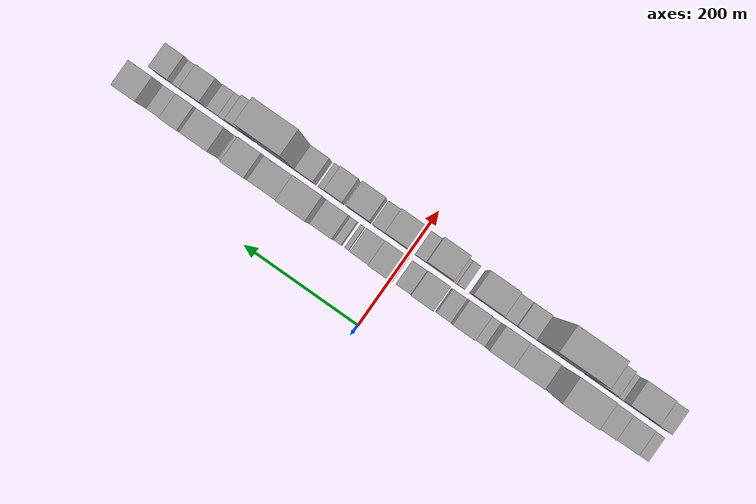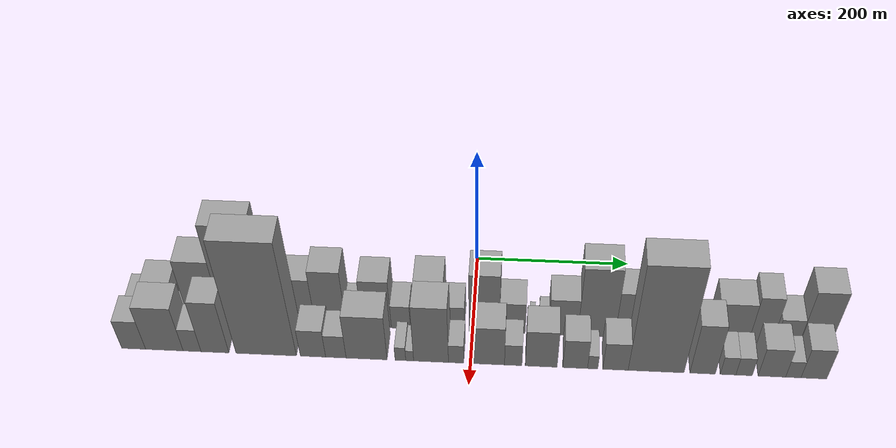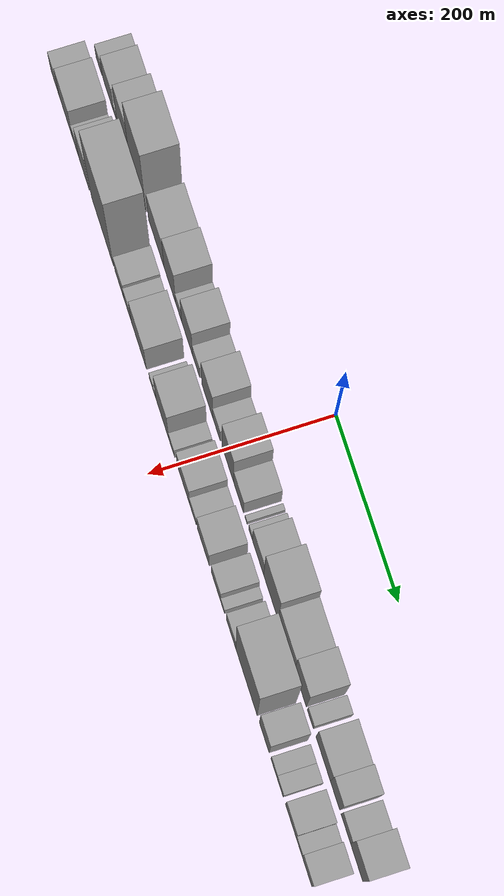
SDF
<sdf version="1.6">
 <world name="default">
  <scene>
   <sky><clouds><speed>12</speed></clouds></sky>
   <ambient>0.4 0.4 0.4 1</ambient>
   <background>0.7 0.7 0.7 1</background>
   <shadows>1</shadows>
  </scene>
  <gravity>0 0 -9.8066</gravity>
  <magnetic_field>6e-06 2.3e-05 -4.2e-05</magnetic_field>
  <physics default="0" name="default_physics" type="ode">
   <ode>
    <solver>
     <type>quick</type>
     <iters>10</iters>
     <sor>1.0</sor>
     <use_dynamic_moi_rescaling>0</use_dynamic_moi_rescaling>
    </solver>
    <constraints>
     <cfm>0</cfm>
     <erp>0.2</erp>
     <contact_max_correcting_vel>100</contact_max_correcting_vel>
     <contact_surface_layer>0.001</contact_surface_layer>
    </constraints>
   </ode>
   <max_step_size>0.004</max_step_size>
   <real_time_factor>1</real_time_factor>
   <real_time_update_rate>250</real_time_update_rate>
  </physics>
  <light name="sun" type="directional">
   <pose>0 0 10 0 0 0</pose>
   <diffuse>0.8 0.8 0.8 1</diffuse>
   <specular>0.2 0.2 0.2 1</specular>
   <attenuation>
    <range>1000</range>
    <constant>0.9</constant>
    <linear>0.01</linear>
    <quadratic>0.001</quadratic>
   </attenuation>
   <direction>-0.5 0.1 -0.9</direction>
  </light>
  <model name="building_1">
   <static>1</static>
   <pose>100.0000 -427.6535 0 0.000000 0.000000 0.000000</pose>
   <link name="link">
    <pose>0 0 19.50 0 0 0</pose>
    <collision name="collision"><geometry><box><size>40.0000 20.6931 39.0000</size></box></geometry></collision>
    <visual name="visual">
     <cast_shadows>0</cast_shadows>
     <geometry><box><size>40.0000 20.6931 39.0000</size></box></geometry>
     <material>
      <script>
       <uri>model://grey_wall/materials/scripts</uri>
       <uri>model://grey_wall/materials/textures</uri>
       <name>vrc/grey_wall</name>
      </script>
     </material>
    </visual>
   </link>
  </model>
  <model name="building_2">
   <static>1</static>
   <pose>100.0000 -394.6250 0 0.000000 0.000000 0.000000</pose>
   <link name="link">
    <pose>0 0 34.50 0 0 0</pose>
    <collision name="collision"><geometry><box><size>40.0000 37.3639 69.0000</size></box></geometry></collision>
    <visual name="visual">
     <cast_shadows>0</cast_shadows>
     <geometry><box><size>40.0000 37.3639 69.0000</size></box></geometry>
     <material>
      <script>
       <uri>model://grey_wall/materials/scripts</uri>
       <uri>model://grey_wall/materials/textures</uri>
       <name>vrc/grey_wall</name>
      </script>
     </material>
    </visual>
   </link>
  </model>
  <model name="building_3">
   <static>1</static>
   <pose>100.0000 -369.5187 0 0.000000 0.000000 0.000000</pose>
   <link name="link">
    <pose>0 0 13.50 0 0 0</pose>
    <collision name="collision"><geometry><box><size>40.0000 12.8487 27.0000</size></box></geometry></collision>
    <visual name="visual">
     <cast_shadows>0</cast_shadows>
     <geometry><box><size>40.0000 12.8487 27.0000</size></box></geometry>
     <material>
      <script>
       <uri>model://grey_wall/materials/scripts</uri>
       <uri>model://grey_wall/materials/textures</uri>
       <name>vrc/grey_wall</name>
      </script>
     </material>
    </visual>
   </link>
  </model>
  <model name="building_4">
   <static>1</static>
   <pose>100.0000 -341.1027 0 0.000000 0.000000 0.000000</pose>
   <link name="link">
    <pose>0 0 58.50 0 0 0</pose>
    <collision name="collision"><geometry><box><size>40.0000 43.9832 117.0000</size></box></geometry></collision>
    <visual name="visual">
     <cast_shadows>0</cast_shadows>
     <geometry><box><size>40.0000 43.9832 117.0000</size></box></geometry>
     <material>
      <script>
       <uri>model://grey_wall/materials/scripts</uri>
       <uri>model://grey_wall/materials/textures</uri>
       <name>vrc/grey_wall</name>
      </script>
     </material>
    </visual>
   </link>
  </model>
  <model name="building_5">
   <static>1</static>
   <pose>100.0000 -290.9600 0 0.000000 0.000000 0.000000</pose>
   <link name="link">
    <pose>0 0 93.00 0 0 0</pose>
    <collision name="collision"><geometry><box><size>40.0000 56.3022 186.0000</size></box></geometry></collision>
    <visual name="visual">
     <cast_shadows>0</cast_shadows>
     <geometry><box><size>40.0000 56.3022 186.0000</size></box></geometry>
     <material>
      <script>
       <uri>model://grey_wall/materials/scripts</uri>
       <uri>model://grey_wall/materials/textures</uri>
       <name>vrc/grey_wall</name>
      </script>
     </material>
    </visual>
   </link>
  </model>
  <model name="building_6">
   <static>1</static>
   <pose>100.0000 -227.0618 0 0.000000 0.000000 0.000000</pose>
   <link name="link">
    <pose>0 0 45.00 0 0 0</pose>
    <collision name="collision"><geometry><box><size>40.0000 53.4941 90.0000</size></box></geometry></collision>
    <visual name="visual">
     <cast_shadows>0</cast_shadows>
     <geometry><box><size>40.0000 53.4941 90.0000</size></box></geometry>
     <material>
      <script>
       <uri>model://grey_wall/materials/scripts</uri>
       <uri>model://grey_wall/materials/textures</uri>
       <name>vrc/grey_wall</name>
      </script>
     </material>
    </visual>
   </link>
  </model>
  <model name="building_7">
   <static>1</static>
   <pose>100.0000 -180.6068 0 0.000000 0.000000 0.000000</pose>
   <link name="link">
    <pose>0 0 54.00 0 0 0</pose>
    <collision name="collision"><geometry><box><size>40.0000 39.4160 108.0000</size></box></geometry></collision>
    <visual name="visual">
     <cast_shadows>0</cast_shadows>
     <geometry><box><size>40.0000 39.4160 108.0000</size></box></geometry>
     <material>
      <script>
       <uri>model://grey_wall/materials/scripts</uri>
       <uri>model://grey_wall/materials/textures</uri>
       <name>vrc/grey_wall</name>
      </script>
     </material>
    </visual>
   </link>
  </model>
  <model name="building_8">
   <static>1</static>
   <pose>100.0000 -150.5978 0 0.000000 0.000000 0.000000</pose>
   <link name="link">
    <pose>0 0 19.50 0 0 0</pose>
    <collision name="collision"><geometry><box><size>40.0000 20.6020 39.0000</size></box></geometry></collision>
    <visual name="visual">
     <cast_shadows>0</cast_shadows>
     <geometry><box><size>40.0000 20.6020 39.0000</size></box></geometry>
     <material>
      <script>
       <uri>model://grey_wall/materials/scripts</uri>
       <uri>model://grey_wall/materials/textures</uri>
       <name>vrc/grey_wall</name>
      </script>
     </material>
    </visual>
   </link>
  </model>
  <model name="building_9">
   <static>1</static>
   <pose>100.0000 -121.7113 0 0.000000 0.000000 0.000000</pose>
   <link name="link">
    <pose>0 0 46.50 0 0 0</pose>
    <collision name="collision"><geometry><box><size>40.0000 37.1710 93.0000</size></box></geometry></collision>
    <visual name="visual">
     <cast_shadows>0</cast_shadows>
     <geometry><box><size>40.0000 37.1710 93.0000</size></box></geometry>
     <material>
      <script>
       <uri>model://grey_wall/materials/scripts</uri>
       <uri>model://grey_wall/materials/textures</uri>
       <name>vrc/grey_wall</name>
      </script>
     </material>
    </visual>
   </link>
  </model>
  <model name="building_10">
   <static>1</static>
   <pose>100.0000 -90.9961 0 0.000000 0.000000 0.000000</pose>
   <link name="link">
    <pose>0 0 22.50 0 0 0</pose>
    <collision name="collision"><geometry><box><size>40.0000 24.2593 45.0000</size></box></geometry></collision>
    <visual name="visual">
     <cast_shadows>0</cast_shadows>
     <geometry><box><size>40.0000 24.2593 45.0000</size></box></geometry>
     <material>
      <script>
       <uri>model://grey_wall/materials/scripts</uri>
       <uri>model://grey_wall/materials/textures</uri>
       <name>vrc/grey_wall</name>
      </script>
     </material>
    </visual>
   </link>
  </model>
  <model name="building_11">
   <static>1</static>
   <pose>100.0000 -53.4743 0 0.000000 0.000000 0.000000</pose>
   <link name="link">
    <pose>0 0 49.50 0 0 0</pose>
    <collision name="collision"><geometry><box><size>40.0000 36.7844 99.0000</size></box></geometry></collision>
    <visual name="visual">
     <cast_shadows>0</cast_shadows>
     <geometry><box><size>40.0000 36.7844 99.0000</size></box></geometry>
     <material>
      <script>
       <uri>model://grey_wall/materials/scripts</uri>
       <uri>model://grey_wall/materials/textures</uri>
       <name>vrc/grey_wall</name>
      </script>
     </material>
    </visual>
   </link>
  </model>
  <model name="building_12">
   <static>1</static>
   <pose>100.0000 -22.6078 0 0.000000 0.000000 0.000000</pose>
   <link name="link">
    <pose>0 0 24.00 0 0 0</pose>
    <collision name="collision"><geometry><box><size>40.0000 24.9486 48.0000</size></box></geometry></collision>
    <visual name="visual">
     <cast_shadows>0</cast_shadows>
     <geometry><box><size>40.0000 24.9486 48.0000</size></box></geometry>
     <material>
      <script>
       <uri>model://grey_wall/materials/scripts</uri>
       <uri>model://grey_wall/materials/textures</uri>
       <name>vrc/grey_wall</name>
      </script>
     </material>
    </visual>
   </link>
  </model>
  <model name="building_13">
   <static>1</static>
   <pose>100.0000 15.1622 0 0.000000 0.000000 0.000000</pose>
   <link name="link">
    <pose>0 0 57.00 0 0 0</pose>
    <collision name="collision"><geometry><box><size>40.0000 38.5914 114.0000</size></box></geometry></collision>
    <visual name="visual">
     <cast_shadows>0</cast_shadows>
     <geometry><box><size>40.0000 38.5914 114.0000</size></box></geometry>
     <material>
      <script>
       <uri>model://grey_wall/materials/scripts</uri>
       <uri>model://grey_wall/materials/textures</uri>
       <name>vrc/grey_wall</name>
      </script>
     </material>
    </visual>
   </link>
  </model>
  <model name="building_14">
   <static>1</static>
   <pose>100.0000 50.7963 0 0.000000 0.000000 0.000000</pose>
   <link name="link">
    <pose>0 0 30.00 0 0 0</pose>
    <collision name="collision"><geometry><box><size>40.0000 32.6769 60.0000</size></box></geometry></collision>
    <visual name="visual">
     <cast_shadows>0</cast_shadows>
     <geometry><box><size>40.0000 32.6769 60.0000</size></box></geometry>
     <material>
      <script>
       <uri>model://grey_wall/materials/scripts</uri>
       <uri>model://grey_wall/materials/textures</uri>
       <name>vrc/grey_wall</name>
      </script>
     </material>
    </visual>
   </link>
  </model>
  <model name="building_15">
   <static>1</static>
   <pose>100.0000 75.6895 0 0.000000 0.000000 0.000000</pose>
   <link name="link">
    <pose>0 0 7.50 0 0 0</pose>
    <collision name="collision"><geometry><box><size>40.0000 7.1095 15.0000</size></box></geometry></collision>
    <visual name="visual">
     <cast_shadows>0</cast_shadows>
     <geometry><box><size>40.0000 7.1095 15.0000</size></box></geometry>
     <material>
      <script>
       <uri>model://grey_wall/materials/scripts</uri>
       <uri>model://grey_wall/materials/textures</uri>
       <name>vrc/grey_wall</name>
      </script>
     </material>
    </visual>
   </link>
  </model>
  <model name="building_16">
   <static>1</static>
   <pose>100.0000 90.3539 0 0.000000 0.000000 0.000000</pose>
   <link name="link">
    <pose>0 0 13.50 0 0 0</pose>
    <collision name="collision"><geometry><box><size>40.0000 12.2194 27.0000</size></box></geometry></collision>
    <visual name="visual">
     <cast_shadows>0</cast_shadows>
     <geometry><box><size>40.0000 12.2194 27.0000</size></box></geometry>
     <material>
      <script>
       <uri>model://grey_wall/materials/scripts</uri>
       <uri>model://grey_wall/materials/textures</uri>
       <name>vrc/grey_wall</name>
      </script>
     </material>
    </visual>
   </link>
  </model>
  <model name="building_17">
   <static>1</static>
   <pose>100.0000 114.8886 0 0.000000 0.000000 0.000000</pose>
   <link name="link">
    <pose>0 0 36.00 0 0 0</pose>
    <collision name="collision"><geometry><box><size>40.0000 36.8498 72.0000</size></box></geometry></collision>
    <visual name="visual">
     <cast_shadows>0</cast_shadows>
     <geometry><box><size>40.0000 36.8498 72.0000</size></box></geometry>
     <material>
      <script>
       <uri>model://grey_wall/materials/scripts</uri>
       <uri>model://grey_wall/materials/textures</uri>
       <name>vrc/grey_wall</name>
      </script>
     </material>
    </visual>
   </link>
  </model>
  <model name="building_18">
   <static>1</static>
   <pose>100.0000 156.8658 0 0.000000 0.000000 0.000000</pose>
   <link name="link">
    <pose>0 0 67.50 0 0 0</pose>
    <collision name="collision"><geometry><box><size>40.0000 47.1047 135.0000</size></box></geometry></collision>
    <visual name="visual">
     <cast_shadows>0</cast_shadows>
     <geometry><box><size>40.0000 47.1047 135.0000</size></box></geometry>
     <material>
      <script>
       <uri>model://grey_wall/materials/scripts</uri>
       <uri>model://grey_wall/materials/textures</uri>
       <name>vrc/grey_wall</name>
      </script>
     </material>
    </visual>
   </link>
  </model>
  <model name="building_19">
   <static>1</static>
   <pose>100.0000 206.9208 0 0.000000 0.000000 0.000000</pose>
   <link name="link">
    <pose>0 0 45.00 0 0 0</pose>
    <collision name="collision"><geometry><box><size>40.0000 53.0052 90.0000</size></box></geometry></collision>
    <visual name="visual">
     <cast_shadows>0</cast_shadows>
     <geometry><box><size>40.0000 53.0052 90.0000</size></box></geometry>
     <material>
      <script>
       <uri>model://grey_wall/materials/scripts</uri>
       <uri>model://grey_wall/materials/textures</uri>
       <name>vrc/grey_wall</name>
      </script>
     </material>
    </visual>
   </link>
  </model>
  <model name="building_20">
   <static>1</static>
   <pose>100.0000 252.3691 0 0.000000 0.000000 0.000000</pose>
   <link name="link">
    <pose>0 0 58.50 0 0 0</pose>
    <collision name="collision"><geometry><box><size>40.0000 37.8913 117.0000</size></box></geometry></collision>
    <visual name="visual">
     <cast_shadows>0</cast_shadows>
     <geometry><box><size>40.0000 37.8913 117.0000</size></box></geometry>
     <material>
      <script>
       <uri>model://grey_wall/materials/scripts</uri>
       <uri>model://grey_wall/materials/textures</uri>
       <name>vrc/grey_wall</name>
      </script>
     </material>
    </visual>
   </link>
  </model>
  <model name="building_21">
   <static>1</static>
   <pose>100.0000 284.1715 0 0.000000 0.000000 0.000000</pose>
   <link name="link">
    <pose>0 0 16.50 0 0 0</pose>
    <collision name="collision"><geometry><box><size>40.0000 19.7134 33.0000</size></box></geometry></collision>
    <visual name="visual">
     <cast_shadows>0</cast_shadows>
     <geometry><box><size>40.0000 19.7134 33.0000</size></box></geometry>
     <material>
      <script>
       <uri>model://grey_wall/materials/scripts</uri>
       <uri>model://grey_wall/materials/textures</uri>
       <name>vrc/grey_wall</name>
      </script>
     </material>
    </visual>
   </link>
  </model>
  <model name="building_22">
   <static>1</static>
   <pose>100.0000 324.9975 0 0.000000 0.000000 0.000000</pose>
   <link name="link">
    <pose>0 0 39.00 0 0 0</pose>
    <collision name="collision"><geometry><box><size>40.0000 45.9386 78.0000</size></box></geometry></collision>
    <visual name="visual">
     <cast_shadows>0</cast_shadows>
     <geometry><box><size>40.0000 45.9386 78.0000</size></box></geometry>
     <material>
      <script>
       <uri>model://grey_wall/materials/scripts</uri>
       <uri>model://grey_wall/materials/textures</uri>
       <name>vrc/grey_wall</name>
      </script>
     </material>
    </visual>
   </link>
  </model>
  <model name="building_23">
   <static>1</static>
   <pose>100.0000 362.6990 0 0.000000 0.000000 0.000000</pose>
   <link name="link">
    <pose>0 0 46.50 0 0 0</pose>
    <collision name="collision"><geometry><box><size>40.0000 29.4644 93.0000</size></box></geometry></collision>
    <visual name="visual">
     <cast_shadows>0</cast_shadows>
     <geometry><box><size>40.0000 29.4644 93.0000</size></box></geometry>
     <material>
      <script>
       <uri>model://grey_wall/materials/scripts</uri>
       <uri>model://grey_wall/materials/textures</uri>
       <name>vrc/grey_wall</name>
      </script>
     </material>
    </visual>
   </link>
  </model>
  <model name="building_24">
   <static>1</static>
   <pose>100.0000 396.2812 0 0.000000 0.000000 0.000000</pose>
   <link name="link">
    <pose>0 0 25.50 0 0 0</pose>
    <collision name="collision"><geometry><box><size>40.0000 29.7000 51.0000</size></box></geometry></collision>
    <visual name="visual">
     <cast_shadows>0</cast_shadows>
     <geometry><box><size>40.0000 29.7000 51.0000</size></box></geometry>
     <material>
      <script>
       <uri>model://grey_wall/materials/scripts</uri>
       <uri>model://grey_wall/materials/textures</uri>
       <name>vrc/grey_wall</name>
      </script>
     </material>
    </visual>
   </link>
  </model>
  <model name="building_25">
   <static>1</static>
   <pose>100.0000 430.5857 0 0.000000 0.000000 0.000000</pose>
   <link name="link">
    <pose>0 0 54.00 0 0 0</pose>
    <collision name="collision"><geometry><box><size>40.0000 38.9091 108.0000</size></box></geometry></collision>
    <visual name="visual">
     <cast_shadows>0</cast_shadows>
     <geometry><box><size>40.0000 38.9091 108.0000</size></box></geometry>
     <material>
      <script>
       <uri>model://grey_wall/materials/scripts</uri>
       <uri>model://grey_wall/materials/textures</uri>
       <name>vrc/grey_wall</name>
      </script>
     </material>
    </visual>
   </link>
  </model>
  <model name="building_26">
   <static>1</static>
   <pose>149.0000 -422.8927 0 0.000000 0.000000 0.000000</pose>
   <link name="link">
    <pose>0 0 28.50 0 0 0</pose>
    <collision name="collision"><geometry><box><size>40.0000 30.2145 57.0000</size></box></geometry></collision>
    <visual name="visual">
     <cast_shadows>0</cast_shadows>
     <geometry><box><size>40.0000 30.2145 57.0000</size></box></geometry>
     <material>
      <script>
       <uri>model://grey_wall/materials/scripts</uri>
       <uri>model://grey_wall/materials/textures</uri>
       <name>vrc/grey_wall</name>
      </script>
     </material>
    </visual>
   </link>
  </model>
  <model name="building_27">
   <static>1</static>
   <pose>149.0000 -384.0058 0 0.000000 0.000000 0.000000</pose>
   <link name="link">
    <pose>0 0 43.50 0 0 0</pose>
    <collision name="collision"><geometry><box><size>40.0000 47.5593 87.0000</size></box></geometry></collision>
    <visual name="visual">
     <cast_shadows>0</cast_shadows>
     <geometry><box><size>40.0000 47.5593 87.0000</size></box></geometry>
     <material>
      <script>
       <uri>model://grey_wall/materials/scripts</uri>
       <uri>model://grey_wall/materials/textures</uri>
       <name>vrc/grey_wall</name>
      </script>
     </material>
    </visual>
   </link>
  </model>
  <model name="building_28">
   <static>1</static>
   <pose>149.0000 -348.8695 0 0.000000 0.000000 0.000000</pose>
   <link name="link">
    <pose>0 0 22.50 0 0 0</pose>
    <collision name="collision"><geometry><box><size>40.0000 22.7132 45.0000</size></box></geometry></collision>
    <visual name="visual">
     <cast_shadows>0</cast_shadows>
     <geometry><box><size>40.0000 22.7132 45.0000</size></box></geometry>
     <material>
      <script>
       <uri>model://grey_wall/materials/scripts</uri>
       <uri>model://grey_wall/materials/textures</uri>
       <name>vrc/grey_wall</name>
      </script>
     </material>
    </visual>
   </link>
  </model>
  <model name="building_29">
   <static>1</static>
   <pose>149.0000 -319.9861 0 0.000000 0.000000 0.000000</pose>
   <link name="link">
    <pose>0 0 51.00 0 0 0</pose>
    <collision name="collision"><geometry><box><size>40.0000 35.0536 102.0000</size></box></geometry></collision>
    <visual name="visual">
     <cast_shadows>0</cast_shadows>
     <geometry><box><size>40.0000 35.0536 102.0000</size></box></geometry>
     <material>
      <script>
       <uri>model://grey_wall/materials/scripts</uri>
       <uri>model://grey_wall/materials/textures</uri>
       <name>vrc/grey_wall</name>
      </script>
     </material>
    </visual>
   </link>
  </model>
  <model name="building_30">
   <static>1</static>
   <pose>149.0000 -255.3863 0 0.000000 0.000000 0.000000</pose>
   <link name="link">
    <pose>0 0 109.50 0 0 0</pose>
    <collision name="collision"><geometry><box><size>40.0000 76.1459 219.0000</size></box></geometry></collision>
    <visual name="visual">
     <cast_shadows>0</cast_shadows>
     <geometry><box><size>40.0000 76.1459 219.0000</size></box></geometry>
     <material>
      <script>
       <uri>model://grey_wall/materials/scripts</uri>
       <uri>model://grey_wall/materials/textures</uri>
       <name>vrc/grey_wall</name>
      </script>
     </material>
    </visual>
   </link>
  </model>
  <model name="building_31">
   <static>1</static>
   <pose>149.0000 -196.4663 0 0.000000 0.000000 0.000000</pose>
   <link name="link">
    <pose>0 0 27.00 0 0 0</pose>
    <collision name="collision"><geometry><box><size>40.0000 31.6940 54.0000</size></box></geometry></collision>
    <visual name="visual">
     <cast_shadows>0</cast_shadows>
     <geometry><box><size>40.0000 31.6940 54.0000</size></box></geometry>
     <material>
      <script>
       <uri>model://grey_wall/materials/scripts</uri>
       <uri>model://grey_wall/materials/textures</uri>
       <name>vrc/grey_wall</name>
      </script>
     </material>
    </visual>
   </link>
  </model>
  <model name="building_32">
   <static>1</static>
   <pose>149.0000 -167.7785 0 0.000000 0.000000 0.000000</pose>
   <link name="link">
    <pose>0 0 22.50 0 0 0</pose>
    <collision name="collision"><geometry><box><size>40.0000 25.6816 45.0000</size></box></geometry></collision>
    <visual name="visual">
     <cast_shadows>0</cast_shadows>
     <geometry><box><size>40.0000 25.6816 45.0000</size></box></geometry>
     <material>
      <script>
       <uri>model://grey_wall/materials/scripts</uri>
       <uri>model://grey_wall/materials/textures</uri>
       <name>vrc/grey_wall</name>
      </script>
     </material>
    </visual>
   </link>
  </model>
  <model name="building_33">
   <static>1</static>
   <pose>149.0000 -129.2795 0 0.000000 0.000000 0.000000</pose>
   <link name="link">
    <pose>0 0 43.50 0 0 0</pose>
    <collision name="collision"><geometry><box><size>40.0000 51.3163 87.0000</size></box></geometry></collision>
    <visual name="visual">
     <cast_shadows>0</cast_shadows>
     <geometry><box><size>40.0000 51.3163 87.0000</size></box></geometry>
     <material>
      <script>
       <uri>model://grey_wall/materials/scripts</uri>
       <uri>model://grey_wall/materials/textures</uri>
       <name>vrc/grey_wall</name>
      </script>
     </material>
    </visual>
   </link>
  </model>
  <model name="building_34">
   <static>1</static>
   <pose>149.0000 -86.9958 0 0.000000 0.000000 0.000000</pose>
   <link name="link">
    <pose>0 0 13.50 0 0 0</pose>
    <collision name="collision"><geometry><box><size>40.0000 13.2511 27.0000</size></box></geometry></collision>
    <visual name="visual">
     <cast_shadows>0</cast_shadows>
     <geometry><box><size>40.0000 13.2511 27.0000</size></box></geometry>
     <material>
      <script>
       <uri>model://grey_wall/materials/scripts</uri>
       <uri>model://grey_wall/materials/textures</uri>
       <name>vrc/grey_wall</name>
      </script>
     </material>
    </visual>
   </link>
  </model>
  <model name="building_35">
   <static>1</static>
   <pose>149.0000 -75.4502 0 0.000000 0.000000 0.000000</pose>
   <link name="link">
    <pose>0 0 10.50 0 0 0</pose>
    <collision name="collision"><geometry><box><size>40.0000 9.8401 21.0000</size></box></geometry></collision>
    <visual name="visual">
     <cast_shadows>0</cast_shadows>
     <geometry><box><size>40.0000 9.8401 21.0000</size></box></geometry>
     <material>
      <script>
       <uri>model://grey_wall/materials/scripts</uri>
       <uri>model://grey_wall/materials/textures</uri>
       <name>vrc/grey_wall</name>
      </script>
     </material>
    </visual>
   </link>
  </model>
  <model name="building_36">
   <static>1</static>
   <pose>149.0000 -48.7903 0 0.000000 0.000000 0.000000</pose>
   <link name="link">
    <pose>0 0 55.50 0 0 0</pose>
    <collision name="collision"><geometry><box><size>40.0000 43.4797 111.0000</size></box></geometry></collision>
    <visual name="visual">
     <cast_shadows>0</cast_shadows>
     <geometry><box><size>40.0000 43.4797 111.0000</size></box></geometry>
     <material>
      <script>
       <uri>model://grey_wall/materials/scripts</uri>
       <uri>model://grey_wall/materials/textures</uri>
       <name>vrc/grey_wall</name>
      </script>
     </material>
    </visual>
   </link>
  </model>
  <model name="building_37">
   <static>1</static>
   <pose>149.0000 -17.5507 0 0.000000 0.000000 0.000000</pose>
   <link name="link">
    <pose>0 0 18.00 0 0 0</pose>
    <collision name="collision"><geometry><box><size>40.0000 18.9996 36.0000</size></box></geometry></collision>
    <visual name="visual">
     <cast_shadows>0</cast_shadows>
     <geometry><box><size>40.0000 18.9996 36.0000</size></box></geometry>
     <material>
      <script>
       <uri>model://grey_wall/materials/scripts</uri>
       <uri>model://grey_wall/materials/textures</uri>
       <name>vrc/grey_wall</name>
      </script>
     </material>
    </visual>
   </link>
  </model>
  <model name="building_38">
   <static>1</static>
   <pose>149.0000 21.8037 0 0.000000 0.000000 0.000000</pose>
   <link name="link">
    <pose>0 0 37.50 0 0 0</pose>
    <collision name="collision"><geometry><box><size>40.0000 41.7092 75.0000</size></box></geometry></collision>
    <visual name="visual">
     <cast_shadows>0</cast_shadows>
     <geometry><box><size>40.0000 41.7092 75.0000</size></box></geometry>
     <material>
      <script>
       <uri>model://grey_wall/materials/scripts</uri>
       <uri>model://grey_wall/materials/textures</uri>
       <name>vrc/grey_wall</name>
      </script>
     </material>
    </visual>
   </link>
  </model>
  <model name="building_39">
   <static>1</static>
   <pose>149.0000 53.5422 0 0.000000 0.000000 0.000000</pose>
   <link name="link">
    <pose>0 0 21.00 0 0 0</pose>
    <collision name="collision"><geometry><box><size>40.0000 21.7679 42.0000</size></box></geometry></collision>
    <visual name="visual">
     <cast_shadows>0</cast_shadows>
     <geometry><box><size>40.0000 21.7679 42.0000</size></box></geometry>
     <material>
      <script>
       <uri>model://grey_wall/materials/scripts</uri>
       <uri>model://grey_wall/materials/textures</uri>
       <name>vrc/grey_wall</name>
      </script>
     </material>
    </visual>
   </link>
  </model>
  <model name="building_40">
   <static>1</static>
   <pose>149.0000 88.1926 0 0.000000 0.000000 0.000000</pose>
   <link name="link">
    <pose>0 0 36.00 0 0 0</pose>
    <collision name="collision"><geometry><box><size>40.0000 39.5329 72.0000</size></box></geometry></collision>
    <visual name="visual">
     <cast_shadows>0</cast_shadows>
     <geometry><box><size>40.0000 39.5329 72.0000</size></box></geometry>
     <material>
      <script>
       <uri>model://grey_wall/materials/scripts</uri>
       <uri>model://grey_wall/materials/textures</uri>
       <name>vrc/grey_wall</name>
      </script>
     </material>
    </visual>
   </link>
  </model>
  <model name="building_41">
   <static>1</static>
   <pose>149.0000 130.2591 0 0.000000 0.000000 0.000000</pose>
   <link name="link">
    <pose>0 0 28.50 0 0 0</pose>
    <collision name="collision"><geometry><box><size>40.0000 30.6001 57.0000</size></box></geometry></collision>
    <visual name="visual">
     <cast_shadows>0</cast_shadows>
     <geometry><box><size>40.0000 30.6001 57.0000</size></box></geometry>
     <material>
      <script>
       <uri>model://grey_wall/materials/scripts</uri>
       <uri>model://grey_wall/materials/textures</uri>
       <name>vrc/grey_wall</name>
      </script>
     </material>
    </visual>
   </link>
  </model>
  <model name="building_42">
   <static>1</static>
   <pose>149.0000 151.9673 0 0.000000 0.000000 0.000000</pose>
   <link name="link">
    <pose>0 0 13.50 0 0 0</pose>
    <collision name="collision"><geometry><box><size>40.0000 12.8163 27.0000</size></box></geometry></collision>
    <visual name="visual">
     <cast_shadows>0</cast_shadows>
     <geometry><box><size>40.0000 12.8163 27.0000</size></box></geometry>
     <material>
      <script>
       <uri>model://grey_wall/materials/scripts</uri>
       <uri>model://grey_wall/materials/textures</uri>
       <name>vrc/grey_wall</name>
      </script>
     </material>
    </visual>
   </link>
  </model>
  <model name="building_43">
   <static>1</static>
   <pose>149.0000 180.0473 0 0.000000 0.000000 0.000000</pose>
   <link name="link">
    <pose>0 0 27.00 0 0 0</pose>
    <collision name="collision"><geometry><box><size>40.0000 31.3436 54.0000</size></box></geometry></collision>
    <visual name="visual">
     <cast_shadows>0</cast_shadows>
     <geometry><box><size>40.0000 31.3436 54.0000</size></box></geometry>
     <material>
      <script>
       <uri>model://grey_wall/materials/scripts</uri>
       <uri>model://grey_wall/materials/textures</uri>
       <name>vrc/grey_wall</name>
      </script>
     </material>
    </visual>
   </link>
  </model>
  <model name="building_44">
   <static>1</static>
   <pose>149.0000 230.2277 0 0.000000 0.000000 0.000000</pose>
   <link name="link">
    <pose>0 0 103.50 0 0 0</pose>
    <collision name="collision"><geometry><box><size>40.0000 69.0172 207.0000</size></box></geometry></collision>
    <visual name="visual">
     <cast_shadows>0</cast_shadows>
     <geometry><box><size>40.0000 69.0172 207.0000</size></box></geometry>
     <material>
      <script>
       <uri>model://grey_wall/materials/scripts</uri>
       <uri>model://grey_wall/materials/textures</uri>
       <name>vrc/grey_wall</name>
      </script>
     </material>
    </visual>
   </link>
  </model>
  <model name="building_45">
   <static>1</static>
   <pose>149.0000 287.4355 0 0.000000 0.000000 0.000000</pose>
   <link name="link">
    <pose>0 0 49.50 0 0 0</pose>
    <collision name="collision"><geometry><box><size>40.0000 31.3983 99.0000</size></box></geometry></collision>
    <visual name="visual">
     <cast_shadows>0</cast_shadows>
     <geometry><box><size>40.0000 31.3983 99.0000</size></box></geometry>
     <material>
      <script>
       <uri>model://grey_wall/materials/scripts</uri>
       <uri>model://grey_wall/materials/textures</uri>
       <name>vrc/grey_wall</name>
      </script>
     </material>
    </visual>
   </link>
  </model>
  <model name="building_46">
   <static>1</static>
   <pose>149.0000 318.7359 0 0.000000 0.000000 0.000000</pose>
   <link name="link">
    <pose>0 0 18.00 0 0 0</pose>
    <collision name="collision"><geometry><box><size>40.0000 19.2025 36.0000</size></box></geometry></collision>
    <visual name="visual">
     <cast_shadows>0</cast_shadows>
     <geometry><box><size>40.0000 19.2025 36.0000</size></box></geometry>
     <material>
      <script>
       <uri>model://grey_wall/materials/scripts</uri>
       <uri>model://grey_wall/materials/textures</uri>
       <name>vrc/grey_wall</name>
      </script>
     </material>
    </visual>
   </link>
  </model>
  <model name="building_47">
   <static>1</static>
   <pose>149.0000 338.4145 0 0.000000 0.000000 0.000000</pose>
   <link name="link">
    <pose>0 0 18.00 0 0 0</pose>
    <collision name="collision"><geometry><box><size>40.0000 20.1549 36.0000</size></box></geometry></collision>
    <visual name="visual">
     <cast_shadows>0</cast_shadows>
     <geometry><box><size>40.0000 20.1549 36.0000</size></box></geometry>
     <material>
      <script>
       <uri>model://grey_wall/materials/scripts</uri>
       <uri>model://grey_wall/materials/textures</uri>
       <name>vrc/grey_wall</name>
      </script>
     </material>
    </visual>
   </link>
  </model>
  <model name="building_48">
   <static>1</static>
   <pose>149.0000 372.3784 0 0.000000 0.000000 0.000000</pose>
   <link name="link">
    <pose>0 0 28.50 0 0 0</pose>
    <collision name="collision"><geometry><box><size>40.0000 33.7728 57.0000</size></box></geometry></collision>
    <visual name="visual">
     <cast_shadows>0</cast_shadows>
     <geometry><box><size>40.0000 33.7728 57.0000</size></box></geometry>
     <material>
      <script>
       <uri>model://grey_wall/materials/scripts</uri>
       <uri>model://grey_wall/materials/textures</uri>
       <name>vrc/grey_wall</name>
      </script>
     </material>
    </visual>
   </link>
  </model>
  <model name="building_49">
   <static>1</static>
   <pose>149.0000 398.6457 0 0.000000 0.000000 0.000000</pose>
   <link name="link">
    <pose>0 0 16.50 0 0 0</pose>
    <collision name="collision"><geometry><box><size>40.0000 18.7617 33.0000</size></box></geometry></collision>
    <visual name="visual">
     <cast_shadows>0</cast_shadows>
     <geometry><box><size>40.0000 18.7617 33.0000</size></box></geometry>
     <material>
      <script>
       <uri>model://grey_wall/materials/scripts</uri>
       <uri>model://grey_wall/materials/textures</uri>
       <name>vrc/grey_wall</name>
      </script>
     </material>
    </visual>
   </link>
  </model>
  <model name="building_50">
   <static>1</static>
   <pose>149.0000 423.7917 0 0.000000 0.000000 0.000000</pose>
   <link name="link">
    <pose>0 0 30.00 0 0 0</pose>
    <collision name="collision"><geometry><box><size>40.0000 31.5302 60.0000</size></box></geometry></collision>
    <visual name="visual">
     <cast_shadows>0</cast_shadows>
     <geometry><box><size>40.0000 31.5302 60.0000</size></box></geometry>
     <material>
      <script>
       <uri>model://grey_wall/materials/scripts</uri>
       <uri>model://grey_wall/materials/textures</uri>
       <name>vrc/grey_wall</name>
      </script>
     </material>
    </visual>
   </link>
  </model>
 </world>
</sdf>
